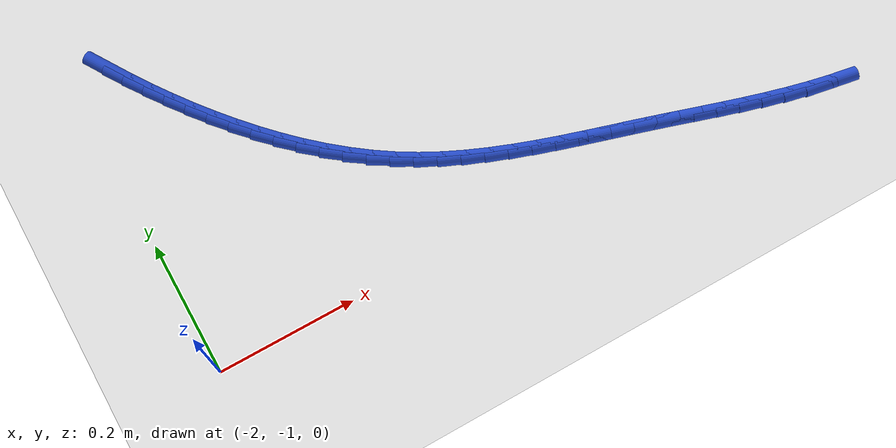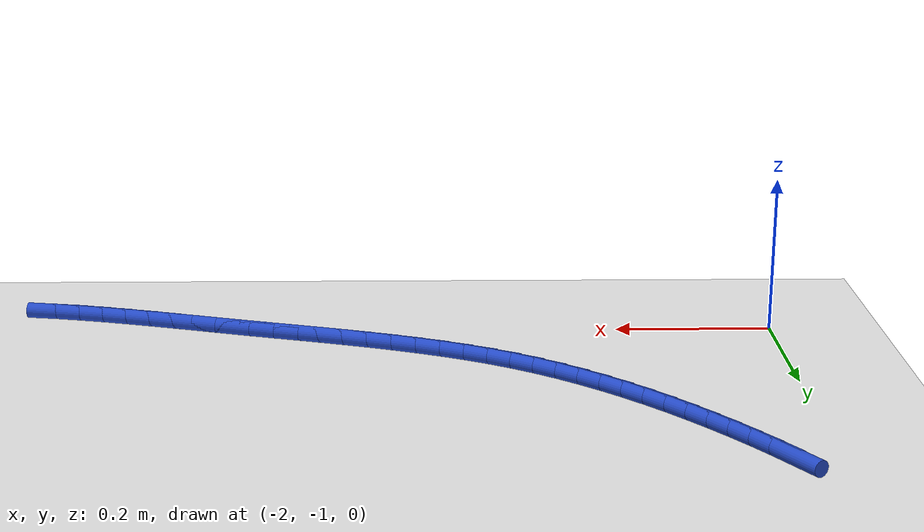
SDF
<sdf version="1.6">
 <world name="default">
  <model name="ground_plane">
   <static>1</static>
   <link name="link">
    <collision name="collision">
     <geometry><plane><normal>0 0 1</normal><size>100 100</size></plane></geometry>
     <surface><friction><ode><mu>100</mu><mu2>50</mu2></ode></friction></surface>
    </collision>
    <visual name="visual">
     <cast_shadows>0</cast_shadows>
     <geometry><plane><normal>0 0 1</normal><size>100 100</size></plane></geometry>
     <material>
      <script><uri>file://media/materials/scripts/gazebo.material</uri><name>Gazebo/WhiteGlow</name></script>
     </material>
    </visual>
   </link>
  </model>
  <model name="line">
   <link name="link_117">
    <pose>-1.9419318116631992 -0.5368379401837664 0.01 0 1.57 -1.022828505745842</pose>
    <collision name="collision">
     <geometry><cylinder><radius>0.01</radius><length>0.08</length></cylinder></geometry>
    </collision>
    <visual name="visual">
     <material>
      <script><name>Gazebo/Blue</name><uri>file://media/materials/scripts/gazebo.material</uri></script>
     </material>
     <geometry><cylinder><radius>0.01</radius><length>0.08</length></cylinder></geometry>
    </visual>
   </link>
   <link name="link_118">
    <pose>-1.9246895293412345 -0.5650894981829979 0.01 0 1.57 -0.9928034774740389</pose>
    <collision name="collision">
     <geometry><cylinder><radius>0.01</radius><length>0.08</length></cylinder></geometry>
    </collision>
    <visual name="visual">
     <material>
      <script><name>Gazebo/Blue</name><uri>file://media/materials/scripts/gazebo.material</uri></script>
     </material>
     <geometry><cylinder><radius>0.01</radius><length>0.08</length></cylinder></geometry>
    </visual>
   </link>
   <link name="link_119">
    <pose>-1.9065483901778837 -0.5929003855045504 0.01 0 1.57 -0.9651930319216154</pose>
    <collision name="collision">
     <geometry><cylinder><radius>0.01</radius><length>0.08</length></cylinder></geometry>
    </collision>
    <visual name="visual">
     <material>
      <script><name>Gazebo/Blue</name><uri>file://media/materials/scripts/gazebo.material</uri></script>
     </material>
     <geometry><cylinder><radius>0.01</radius><length>0.08</length></cylinder></geometry>
    </visual>
   </link>
   <link name="link_120">
    <pose>-1.8875889131515011 -0.6202828661350928 0.01 0 1.57 -0.9394392955865227</pose>
    <collision name="collision">
     <geometry><cylinder><radius>0.01</radius><length>0.08</length></cylinder></geometry>
    </collision>
    <visual name="visual">
     <material>
      <script><name>Gazebo/Blue</name><uri>file://media/materials/scripts/gazebo.material</uri></script>
     </material>
     <geometry><cylinder><radius>0.01</radius><length>0.08</length></cylinder></geometry>
    </visual>
   </link>
   <link name="link_121">
    <pose>-1.867881117247794 -0.6472357169123131 0.01 0 1.57 -0.9124762617307649</pose>
    <collision name="collision">
     <geometry><cylinder><radius>0.01</radius><length>0.08</length></cylinder></geometry>
    </collision>
    <visual name="visual">
     <material>
      <script><name>Gazebo/Blue</name><uri>file://media/materials/scripts/gazebo.material</uri></script>
     </material>
     <geometry><cylinder><radius>0.01</radius><length>0.08</length></cylinder></geometry>
    </visual>
   </link>
   <link name="link_122">
    <pose>-1.847431584956829 -0.6736762310484662 0.01 0 1.57 -0.8830512624211305</pose>
    <collision name="collision">
     <geometry><cylinder><radius>0.01</radius><length>0.08</length></cylinder></geometry>
    </collision>
    <visual name="visual">
     <material>
      <script><name>Gazebo/Blue</name><uri>file://media/materials/scripts/gazebo.material</uri></script>
     </material>
     <geometry><cylinder><radius>0.01</radius><length>0.08</length></cylinder></geometry>
    </visual>
   </link>
   <link name="link_123">
    <pose>-1.8262231954636663 -0.6994912550672456 0.01 0 1.57 -0.8510044893449161</pose>
    <collision name="collision">
     <geometry><cylinder><radius>0.01</radius><length>0.08</length></cylinder></geometry>
    </collision>
    <visual name="visual">
     <material>
      <script><name>Gazebo/Blue</name><uri>file://media/materials/scripts/gazebo.material</uri></script>
     </material>
     <geometry><cylinder><radius>0.01</radius><length>0.08</length></cylinder></geometry>
    </visual>
   </link>
   <link name="link_124">
    <pose>-1.804238786995457 -0.7245675828822634 0.01 0 1.57 -0.816170877912191</pose>
    <collision name="collision">
     <geometry><cylinder><radius>0.01</radius><length>0.08</length></cylinder></geometry>
    </collision>
    <visual name="visual">
     <material>
      <script><name>Gazebo/Blue</name><uri>file://media/materials/scripts/gazebo.material</uri></script>
     </material>
     <geometry><cylinder><radius>0.01</radius><length>0.08</length></cylinder></geometry>
    </visual>
   </link>
   <link name="link_125">
    <pose>-1.781461197779349 -0.7487920084071311 0.01 0 1.57 -0.7783836810803941</pose>
    <collision name="collision">
     <geometry><cylinder><radius>0.01</radius><length>0.08</length></cylinder></geometry>
    </collision>
    <visual name="visual">
     <material>
      <script><name>Gazebo/Blue</name><uri>file://media/materials/scripts/gazebo.material</uri></script>
     </material>
     <geometry><cylinder><radius>0.01</radius><length>0.08</length></cylinder></geometry>
    </visual>
   </link>
   <link name="link_126">
    <pose>-1.7578732660424914 -0.7720513255554596 0.01 0 1.57 -0.7374819902195408</pose>
    <collision name="collision">
     <geometry><cylinder><radius>0.01</radius><length>0.08</length></cylinder></geometry>
    </collision>
    <visual name="visual">
     <material>
      <script><name>Gazebo/Blue</name><uri>file://media/materials/scripts/gazebo.material</uri></script>
     </material>
     <geometry><cylinder><radius>0.01</radius><length>0.08</length></cylinder></geometry>
    </visual>
   </link>
   <link name="link_127">
    <pose>-1.7334578300120336 -0.7942323282408609 0.01 0 1.57 -0.6933207087465864</pose>
    <collision name="collision">
     <geometry><cylinder><radius>0.01</radius><length>0.08</length></cylinder></geometry>
    </collision>
    <visual name="visual">
     <material>
      <script><name>Gazebo/Blue</name><uri>file://media/materials/scripts/gazebo.material</uri></script>
     </material>
     <geometry><cylinder><radius>0.01</radius><length>0.08</length></cylinder></geometry>
    </visual>
   </link>
   <link name="link_128">
    <pose>-1.7081977279151244 -0.8152218103769464 0.01 0 1.57 -0.6457832844809221</pose>
    <collision name="collision">
     <geometry><cylinder><radius>0.01</radius><length>0.08</length></cylinder></geometry>
    </collision>
    <visual name="visual">
     <material>
      <script><name>Gazebo/Blue</name><uri>file://media/materials/scripts/gazebo.material</uri></script>
     </material>
     <geometry><cylinder><radius>0.01</radius><length>0.08</length></cylinder></geometry>
    </visual>
   </link>
   <link name="link_129">
    <pose>-1.682075797978913 -0.8349065658773276 0.01 0 1.57 -0.594797238396226</pose>
    <collision name="collision">
     <geometry><cylinder><radius>0.01</radius><length>0.08</length></cylinder></geometry>
    </collision>
    <visual name="visual">
     <material>
      <script><name>Gazebo/Blue</name><uri>file://media/materials/scripts/gazebo.material</uri></script>
     </material>
     <geometry><cylinder><radius>0.01</radius><length>0.08</length></cylinder></geometry>
    </visual>
   </link>
   <link name="link_130">
    <pose>-1.6550748784305478 -0.8531733886556159 0.01 0 1.57 -0.5406206308776617</pose>
    <collision name="collision">
     <geometry><cylinder><radius>0.01</radius><length>0.08</length></cylinder></geometry>
    </collision>
    <visual name="visual">
     <material>
      <script><name>Gazebo/Blue</name><uri>file://media/materials/scripts/gazebo.material</uri></script>
     </material>
     <geometry><cylinder><radius>0.01</radius><length>0.08</length></cylinder></geometry>
    </visual>
   </link>
   <link name="link_131">
    <pose>-1.6271812245337531 -0.8699172118785352 0.01 0 1.57 -0.48818187600139057</pose>
    <collision name="collision">
     <geometry><cylinder><radius>0.01</radius><length>0.08</length></cylinder></geometry>
    </collision>
    <visual name="visual">
     <material>
      <script><name>Gazebo/Blue</name><uri>file://media/materials/scripts/gazebo.material</uri></script>
     </material>
     <geometry><cylinder><radius>0.01</radius><length>0.08</length></cylinder></geometry>
    </visual>
   </link>
   <link name="link_132">
    <pose>-1.5984424363225944 -0.8851790896577046 0.01 0 1.57 -0.4418650844566768</pose>
    <collision name="collision">
     <geometry><cylinder><radius>0.01</radius><length>0.08</length></cylinder></geometry>
    </collision>
    <visual name="visual">
     <material>
      <script><name>Gazebo/Blue</name><uri>file://media/materials/scripts/gazebo.material</uri></script>
     </material>
     <geometry><cylinder><radius>0.01</radius><length>0.08</length></cylinder></geometry>
    </visual>
   </link>
   <link name="link_133">
    <pose>-1.568959176552409 -0.8991264695190074 0.01 0 1.57 -0.40190541703580174</pose>
    <collision name="collision">
     <geometry><cylinder><radius>0.01</radius><length>0.08</length></cylinder></geometry>
    </collision>
    <visual name="visual">
     <material>
      <script><name>Gazebo/Blue</name><uri>file://media/materials/scripts/gazebo.material</uri></script>
     </material>
     <geometry><cylinder><radius>0.01</radius><length>0.08</length></cylinder></geometry>
    </visual>
   </link>
   <link name="link_134">
    <pose>-1.5388338576751237 -0.911930966700055 0.01 0 1.57 -0.36828162515818336</pose>
    <collision name="collision">
     <geometry><cylinder><radius>0.01</radius><length>0.08</length></cylinder></geometry>
    </collision>
    <visual name="visual">
     <material>
      <script><name>Gazebo/Blue</name><uri>file://media/materials/scripts/gazebo.material</uri></script>
     </material>
     <geometry><cylinder><radius>0.01</radius><length>0.08</length></cylinder></geometry>
    </visual>
   </link>
   <link name="link_135">
    <pose>-1.508168892142664 -0.9237641964384584 0.01 0 1.57 -0.3409022232546897</pose>
    <collision name="collision">
     <geometry><cylinder><radius>0.01</radius><length>0.08</length></cylinder></geometry>
    </collision>
    <visual name="visual">
     <material>
      <script><name>Gazebo/Blue</name><uri>file://media/materials/scripts/gazebo.material</uri></script>
     </material>
     <geometry><cylinder><radius>0.01</radius><length>0.08</length></cylinder></geometry>
    </visual>
   </link>
   <link name="link_136">
    <pose>-1.4770666924069566 -0.9347977739718288 0.01 0 1.57 -0.31964583123761753</pose>
    <collision name="collision">
     <geometry><cylinder><radius>0.01</radius><length>0.08</length></cylinder></geometry>
    </collision>
    <visual name="visual">
     <material>
      <script><name>Gazebo/Blue</name><uri>file://media/materials/scripts/gazebo.material</uri></script>
     </material>
     <geometry><cylinder><radius>0.01</radius><length>0.08</length></cylinder></geometry>
    </visual>
   </link>
   <link name="link_137">
    <pose>-1.4456296709199277 -0.945203314537778 0.01 0 1.57 -0.3043921682822381</pose>
    <collision name="collision">
     <geometry><cylinder><radius>0.01</radius><length>0.08</length></cylinder></geometry>
    </collision>
    <visual name="visual">
     <material>
      <script><name>Gazebo/Blue</name><uri>file://media/materials/scripts/gazebo.material</uri></script>
     </material>
     <geometry><cylinder><radius>0.01</radius><length>0.08</length></cylinder></geometry>
    </visual>
   </link>
   <link name="link_138">
    <pose>-1.4139602401335032 -0.9551524333739165 0.01 0 1.57 -0.2950443479932271</pose>
    <collision name="collision">
     <geometry><cylinder><radius>0.01</radius><length>0.08</length></cylinder></geometry>
    </collision>
    <visual name="visual">
     <material>
      <script><name>Gazebo/Blue</name><uri>file://media/materials/scripts/gazebo.material</uri></script>
     </material>
     <geometry><cylinder><radius>0.01</radius><length>0.08</length></cylinder></geometry>
    </visual>
   </link>
   <link name="link_139">
    <pose>-1.382160812499609 -0.9648167457178556 0.01 0 1.57 -0.29154377274988547</pose>
    <collision name="collision">
     <geometry><cylinder><radius>0.01</radius><length>0.08</length></cylinder></geometry>
    </collision>
    <visual name="visual">
     <material>
      <script><name>Gazebo/Blue</name><uri>file://media/materials/scripts/gazebo.material</uri></script>
     </material>
     <geometry><cylinder><radius>0.01</radius><length>0.08</length></cylinder></geometry>
    </visual>
   </link>
   <link name="link_140">
    <pose>-1.3503338004701717 -0.9743678668072067 0.01 0 1.57 -0.2938788993247395</pose>
    <collision name="collision">
     <geometry><cylinder><radius>0.01</radius><length>0.08</length></cylinder></geometry>
    </collision>
    <visual name="visual">
     <material>
      <script><name>Gazebo/Blue</name><uri>file://media/materials/scripts/gazebo.material</uri></script>
     </material>
     <geometry><cylinder><radius>0.01</radius><length>0.08</length></cylinder></geometry>
    </visual>
   </link>
   <link name="link_141">
    <pose>-1.3185816164971185 -0.9839774118795807 0.01 0 1.57 -0.3008603117270208</pose>
    <collision name="collision">
     <geometry><cylinder><radius>0.01</radius><length>0.08</length></cylinder></geometry>
    </collision>
    <visual name="visual">
     <material>
      <script><name>Gazebo/Blue</name><uri>file://media/materials/scripts/gazebo.material</uri></script>
     </material>
     <geometry><cylinder><radius>0.01</radius><length>0.08</length></cylinder></geometry>
    </visual>
   </link>
   <link name="link_142">
    <pose>-1.286988378157358 -0.9937801345368922 0.01 0 1.57 -0.30497484955015597</pose>
    <collision name="collision">
     <geometry><cylinder><radius>0.01</radius><length>0.08</length></cylinder></geometry>
    </collision>
    <visual name="visual">
     <material>
      <script><name>Gazebo/Blue</name><uri>file://media/materials/scripts/gazebo.material</uri></script>
     </material>
     <geometry><cylinder><radius>0.01</radius><length>0.08</length></cylinder></geometry>
    </visual>
   </link>
   <link name="link_143">
    <pose>-1.2555258443486967 -1.0036844012265598 0.01 0 1.57 -0.30331835679112457</pose>
    <collision name="collision">
     <geometry><cylinder><radius>0.01</radius><length>0.08</length></cylinder></geometry>
    </collision>
    <visual name="visual">
     <material>
      <script><name>Gazebo/Blue</name><uri>file://media/materials/scripts/gazebo.material</uri></script>
     </material>
     <geometry><cylinder><radius>0.01</radius><length>0.08</length></cylinder></geometry>
    </visual>
   </link>
   <link name="link_144">
    <pose>-1.2241231458310282 -1.0135126886105392 0.01 0 1.57 -0.29584559633593405</pose>
    <collision name="collision">
     <geometry><cylinder><radius>0.01</radius><length>0.08</length></cylinder></geometry>
    </collision>
    <visual name="visual">
     <material>
      <script><name>Gazebo/Blue</name><uri>file://media/materials/scripts/gazebo.material</uri></script>
     </material>
     <geometry><cylinder><radius>0.01</radius><length>0.08</length></cylinder></geometry>
    </visual>
   </link>
   <link name="link_145">
    <pose>-1.1927093318495434 -1.0230873091099655 0.01 0 1.57 -0.28253447880442645</pose>
    <collision name="collision">
     <geometry><cylinder><radius>0.01</radius><length>0.08</length></cylinder></geometry>
    </collision>
    <visual name="visual">
     <material>
      <script><name>Gazebo/Blue</name><uri>file://media/materials/scripts/gazebo.material</uri></script>
     </material>
     <geometry><cylinder><radius>0.01</radius><length>0.08</length></cylinder></geometry>
    </visual>
   </link>
   <link name="link_146">
    <pose>-1.161213451649432 -1.032230575145973 0.01 0 1.57 -0.2633884993153171</pose>
    <collision name="collision">
     <geometry><cylinder><radius>0.01</radius><length>0.08</length></cylinder></geometry>
    </collision>
    <visual name="visual">
     <material>
      <script><name>Gazebo/Blue</name><uri>file://media/materials/scripts/gazebo.material</uri></script>
     </material>
     <geometry><cylinder><radius>0.01</radius><length>0.08</length></cylinder></geometry>
    </visual>
   </link>
   <link name="link_147">
    <pose>-1.1295645544758846 -1.0407647991396962 0.01 0 1.57 -0.23845040449179544</pose>
    <collision name="collision">
     <geometry><cylinder><radius>0.01</radius><length>0.08</length></cylinder></geometry>
    </collision>
    <visual name="visual">
     <material>
      <script><name>Gazebo/Blue</name><uri>file://media/materials/scripts/gazebo.material</uri></script>
     </material>
     <geometry><cylinder><radius>0.01</radius><length>0.08</length></cylinder></geometry>
    </visual>
   </link>
   <link name="link_148">
    <pose>-1.0976916895740922 -1.04851229351227 0.01 0 1.57 -0.20782103635695642</pose>
    <collision name="collision">
     <geometry><cylinder><radius>0.01</radius><length>0.08</length></cylinder></geometry>
    </collision>
    <visual name="visual">
     <material>
      <script><name>Gazebo/Blue</name><uri>file://media/materials/scripts/gazebo.material</uri></script>
     </material>
     <geometry><cylinder><radius>0.01</radius><length>0.08</length></cylinder></geometry>
    </visual>
   </link>
   <link name="link_149">
    <pose>-1.0655239061892445 -1.0552953706848291 0.01 0 1.57 -0.17176595852219276</pose>
    <collision name="collision">
     <geometry><cylinder><radius>0.01</radius><length>0.08</length></cylinder></geometry>
    </collision>
    <visual name="visual">
     <material>
      <script><name>Gazebo/Blue</name><uri>file://media/materials/scripts/gazebo.material</uri></script>
     </material>
     <geometry><cylinder><radius>0.01</radius><length>0.08</length></cylinder></geometry>
    </visual>
   </link>
  </model>
 </world>
</sdf>
